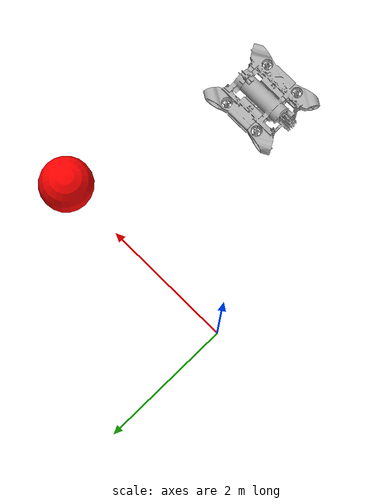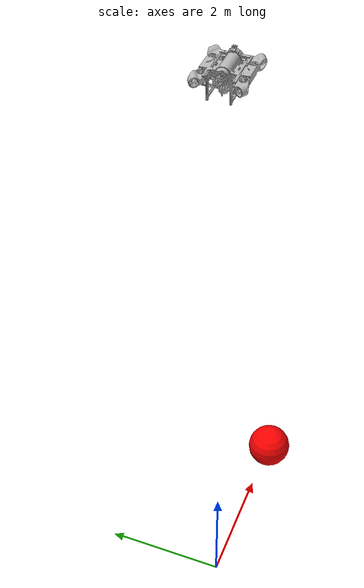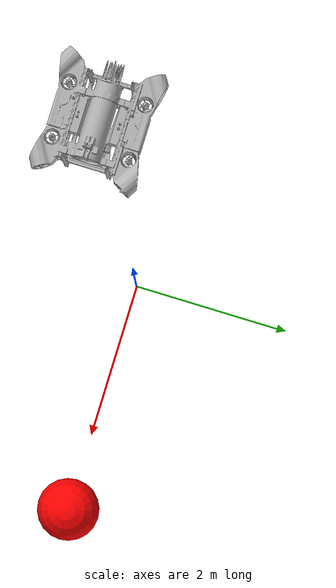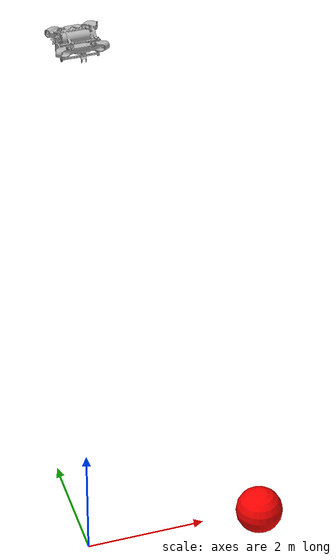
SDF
<?xml version="1.0" ?>
<sdf version="1.8">
  <world name="underwater_world">
    <plugin filename="gz-sim-physics-system" name="gz::sim::systems::Physics"/>
    <plugin filename="gz-sim-scene-broadcaster-system" name="gz::sim::systems::SceneBroadcaster"/>

    <plugin filename="gz-sim-buoyancy-system" name="gz::sim::systems::Buoyancy">
      <uniform_fluid_density>1000</uniform_fluid_density>
    </plugin>

    <plugin filename="gz-sim-imu-system" name="gz::sim::systems::Imu"/>
    <plugin filename="gz-sim-sensors-system" name="gz::sim::systems::Sensors">
      <render_engine>ogre2</render_engine>
    </plugin>

    <light type="directional" name="sun">
      <cast_shadows>true</cast_shadows>
      <pose>0 0 10 0 0 0</pose>
      <diffuse>0.8 0.8 0.8 1</diffuse>
      <specular>0.2 0.2 0.2 1</specular>
      <direction>-0.5 0.1 -0.9</direction>
    </light>

    <model name="cascade">
      <pose>0 0 5 0 0 0</pose>

      <link name="base_link">
        <inertial>
          <pose>0 0 0 0 0 0</pose>
          <mass>152.0</mass>
          <inertia>
            <ixx>5.4</ixx> <iyy>10.6</iyy> <izz>11.8</izz>
            <ixy>0</ixy> <ixz>0</ixz> <iyz>0</iyz>
          </inertia>
        </inertial>

        <collision name="base_collision">
          <geometry>
            <box><size>0.8 0.5 0.4</size></box> </geometry>
        </collision>

        <visual name="base_visual">
          <pose>-0.716 1.56 3.9 1.5708 0 0</pose>
          <geometry>
            <mesh>
              <uri>../meshes/cascade_hull.stl</uri>
              <scale>0.001 0.001 0.001</scale>
            </mesh>
          </geometry>
          <material>
            <ambient>0.7 0.7 0.7 1.0</ambient>
            <diffuse>0.7 0.7 0.7 1.0</diffuse>
            <specular>0.9 0.9 0.9 1.0</specular>
          </material>
        </visual>

        <sensor name="front_camera" type="camera">
          <pose>0.4 0 0.2 0 0 0</pose>
          <always_on>1</always_on>
          <update_rate>30</update_rate> <visualize>true</visualize> <topic>/cascade/camera</topic>
          <camera>
            <horizontal_fov>1.5</horizontal_fov> <image>
              <width>640</width>
              <height>480</height>
              <format>R8G8B8</format>
            </image>
            <clip>
              <near>0.1</near>
              <far>20.0</far>
            </clip>
          </camera>
        </sensor>
      </link>

      <plugin filename="gz-sim-odometry-publisher-system" name="gz::sim::systems::OdometryPublisher">
        <odom_frame>underwater_world</odom_frame>
        <robot_base_frame>base_link</robot_base_frame>
        <odom_topic>/cascade/dvl</odom_topic>
        <odom_publish_frequency>30</odom_publish_frequency>
        <dimensions>3</dimensions> </plugin>

      <link name="propeller_fro"><pose>0.55 -0.3 0 0 0 0.52359</pose><inertial><mass>1.0</mass><inertia><ixx>0.01</ixx><ixy>0</ixy><ixz>0</ixz><iyy>0.01</iyy><iyz>0</iyz><izz>0.01</izz></inertia></inertial></link>
      <joint name="propeller_fro_joint" type="revolute"><parent>base_link</parent><child>propeller_fro</child><axis><xyz>1 0 0</xyz></axis></joint>
      <plugin filename="gz-sim-thruster-system" name="gz::sim::systems::Thruster">
        <joint_name>propeller_fro_joint</joint_name>
        <topic>fro</topic>
        <thrust_coefficient>1.0</thrust_coefficient>
        <propeller_diameter>0.15</propeller_diameter>
        <velocity_control>false</velocity_control>
      </plugin>

      <link name="propeller_flo"><pose>0.55 0.3 0 0 0 -0.52359</pose><inertial><mass>1.0</mass><inertia><ixx>0.01</ixx><ixy>0</ixy><ixz>0</ixz><iyy>0.01</iyy><iyz>0</iyz><izz>0.01</izz></inertia></inertial></link>
      <joint name="propeller_flo_joint" type="revolute"><parent>base_link</parent><child>propeller_flo</child><axis><xyz>1 0 0</xyz></axis></joint>
      <plugin filename="gz-sim-thruster-system" name="gz::sim::systems::Thruster">
        <joint_name>propeller_flo_joint</joint_name>
        <topic>flo</topic>
        <thrust_coefficient>1.0</thrust_coefficient>
        <propeller_diameter>0.15</propeller_diameter>
        <velocity_control>false</velocity_control>
      </plugin>

      <link name="propeller_bro"><pose>-0.55 -0.3 0 0 0 2.618</pose><inertial><mass>1.0</mass><inertia><ixx>0.01</ixx><ixy>0</ixy><ixz>0</ixz><iyy>0.01</iyy><iyz>0</iyz><izz>0.01</izz></inertia></inertial></link>
      <joint name="propeller_bro_joint" type="revolute"><parent>base_link</parent><child>propeller_bro</child><axis><xyz>1 0 0</xyz></axis></joint>
      <plugin filename="gz-sim-thruster-system" name="gz::sim::systems::Thruster">
        <joint_name>propeller_bro_joint</joint_name>
        <topic>bro</topic>
        <thrust_coefficient>1.0</thrust_coefficient>
        <propeller_diameter>0.15</propeller_diameter>
        <velocity_control>false</velocity_control>
      </plugin>

      <link name="propeller_blo"><pose>-0.55 0.3 0 0 0 3.66519</pose><inertial><mass>1.0</mass><inertia><ixx>0.01</ixx><ixy>0</ixy><ixz>0</ixz><iyy>0.01</iyy><iyz>0</iyz><izz>0.01</izz></inertia></inertial></link>
      <joint name="propeller_blo_joint" type="revolute"><parent>base_link</parent><child>propeller_blo</child><axis><xyz>1 0 0</xyz></axis></joint>
      <plugin filename="gz-sim-thruster-system" name="gz::sim::systems::Thruster">
        <joint_name>propeller_blo_joint</joint_name>
        <topic>blo</topic>
        <thrust_coefficient>1.0</thrust_coefficient>
        <propeller_diameter>0.15</propeller_diameter>
        <velocity_control>false</velocity_control>
      </plugin>

      <link name="propeller_fri"><pose>0.45 -0.2 0 0 0 0</pose><inertial><mass>1.0</mass><inertia><ixx>0.01</ixx><ixy>0</ixy><ixz>0</ixz><iyy>0.01</iyy><iyz>0</iyz><izz>0.01</izz></inertia></inertial></link>
      <joint name="propeller_fri_joint" type="revolute"><parent>base_link</parent><child>propeller_fri</child><axis><xyz>0 0 1</xyz></axis></joint>
      <plugin filename="gz-sim-thruster-system" name="gz::sim::systems::Thruster">
        <joint_name>propeller_fri_joint</joint_name>
        <topic>fri</topic>
        <thrust_coefficient>1.0</thrust_coefficient>
        <propeller_diameter>0.15</propeller_diameter>
        <velocity_control>false</velocity_control>
      </plugin>

      <link name="propeller_fli"><pose>0.45 0.2 0 0 0 0</pose><inertial><mass>1.0</mass><inertia><ixx>0.01</ixx><ixy>0</ixy><ixz>0</ixz><iyy>0.01</iyy><iyz>0</iyz><izz>0.01</izz></inertia></inertial></link>
      <joint name="propeller_fli_joint" type="revolute"><parent>base_link</parent><child>propeller_fli</child><axis><xyz>0 0 1</xyz></axis></joint>
      <plugin filename="gz-sim-thruster-system" name="gz::sim::systems::Thruster">
        <joint_name>propeller_fli_joint</joint_name>
        <topic>fli</topic>
        <thrust_coefficient>-1.0</thrust_coefficient>
        <propeller_diameter>0.15</propeller_diameter>
        <velocity_control>false</velocity_control>
      </plugin>

      <link name="propeller_bri"><pose>-0.45 -0.2 0 0 0 0</pose><inertial><mass>1.0</mass><inertia><ixx>0.01</ixx><ixy>0</ixy><ixz>0</ixz><iyy>0.01</iyy><iyz>0</iyz><izz>0.01</izz></inertia></inertial></link>
      <joint name="propeller_bri_joint" type="revolute"><parent>base_link</parent><child>propeller_bri</child><axis><xyz>0 0 1</xyz></axis></joint>
      <plugin filename="gz-sim-thruster-system" name="gz::sim::systems::Thruster">
        <joint_name>propeller_bri_joint</joint_name>
        <topic>bri</topic>
        <thrust_coefficient>-1.0</thrust_coefficient>
        <propeller_diameter>0.15</propeller_diameter>
        <velocity_control>false</velocity_control>
      </plugin>

      <link name="propeller_bli"><pose>-0.45 0.2 0 0 0 0</pose><inertial><mass>1.0</mass><inertia><ixx>0.01</ixx><ixy>0</ixy><ixz>0</ixz><iyy>0.01</iyy><iyz>0</iyz><izz>0.01</izz></inertia></inertial></link>
      <joint name="propeller_bli_joint" type="revolute"><parent>base_link</parent><child>propeller_bli</child><axis><xyz>0 0 1</xyz></axis></joint>
      <plugin filename="gz-sim-thruster-system" name="gz::sim::systems::Thruster">
        <joint_name>propeller_bli_joint</joint_name>
        <topic>bli</topic>
        <thrust_coefficient>1.0</thrust_coefficient>
        <propeller_diameter>0.15</propeller_diameter>
        <velocity_control>false</velocity_control>
      </plugin>

      </model>

      <model name="test_target">
      <pose>3.0 0 0 0 0 0</pose>
      <static>true</static> <link name="link">
        <visual name="visual">
          <geometry>
            <sphere><radius>0.4</radius></sphere>
          </geometry>
          <material>
            <ambient>1.0 0.0 0.0 1.0</ambient> <diffuse>1.0 0.0 0.0 1.0</diffuse>
          </material>
        </visual>
      </link>
    </model>

      <scene>
      <ambient>0.0 0.5 0.8 1.0</ambient>
      <background>0.0 0.2 0.3 1.0</background>
      <fog>
        <type>linear</type>
        <color>0.0 0.3 0.5 1.0</color> <density>0.1</density>
        <start>0.5</start> <end>10.0</end> </fog>
    </scene>
  </world>
</sdf>
